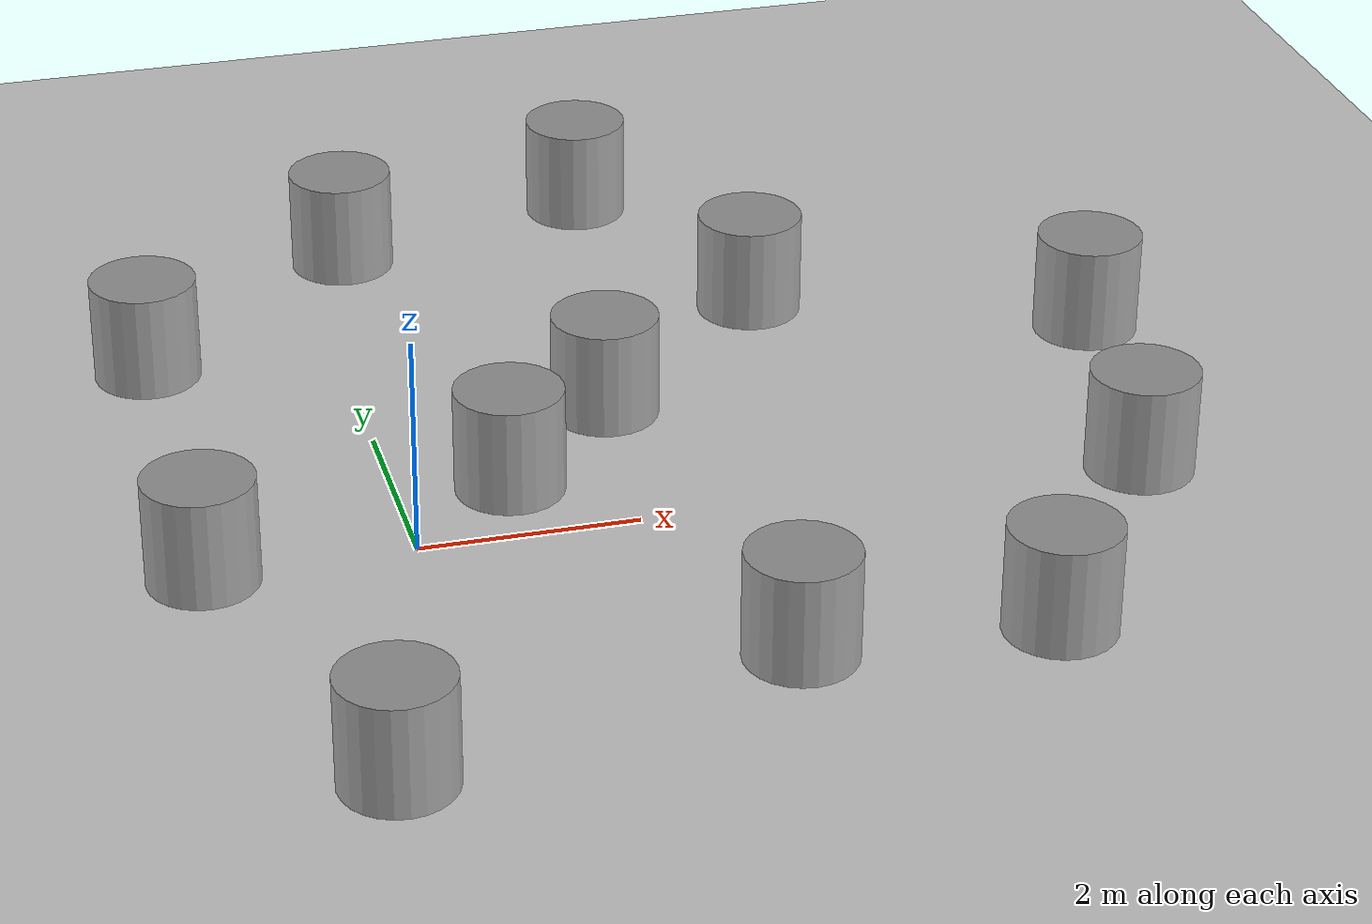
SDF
<sdf version="1.7">
 <world name="default">
  <model name="ground_plane">
   <static>1</static>
   <link name="link">
    <collision name="collision">
     <geometry><plane><normal>0 0 1</normal><size>100 100</size></plane></geometry>
     <surface><friction><ode><mu>100</mu><mu2>50</mu2></ode></friction></surface>
    </collision>
    <visual name="visual">
     <cast_shadows>0</cast_shadows>
     <geometry><plane><normal>0 0 1</normal><size>100 100</size></plane></geometry>
     <material>
      <script><uri>file://media/materials/scripts/gazebo.material</uri><name>Gazebo/Grey</name></script>
     </material>
    </visual>
   </link>
  </model>
  <scene><shadows>0</shadows><ambient>0.4 0.4 0.4 1</ambient><background>0.7 0.7 0.7 1</background></scene>
  <physics type="ode">
   <real_time_update_rate>1000</real_time_update_rate>
   <max_step_size>0.001</max_step_size>
   <real_time_factor>1</real_time_factor>
   <ode>
    <solver>
     <type>quick</type>
     <iters>150</iters>
     <precon_iters>0</precon_iters>
     <sor>1.4</sor>
     <use_dynamic_moi_rescaling>1</use_dynamic_moi_rescaling>
    </solver>
    <constraints>
     <cfm>1e-05</cfm>
     <erp>0.2</erp>
     <contact_max_correcting_vel>2000</contact_max_correcting_vel>
     <contact_surface_layer>0.01</contact_surface_layer>
    </constraints>
   </ode>
  </physics>
  <gravity>0 0 -9.8</gravity>
  <magnetic_field>6e-06 2.3e-05 -4.2e-05</magnetic_field>
  <atmosphere type="adiabatic"/>
  <spherical_coordinates>
   <surface_model>EARTH_WGS84</surface_model>
   <latitude_deg>0</latitude_deg>
   <longitude_deg>0</longitude_deg>
   <elevation>0</elevation>
   <heading_deg>0</heading_deg>
  </spherical_coordinates>
  <light name="user_spot_light_0" type="spot">
   <pose>5.84517 5.89616 1 0 -0 0</pose>
   <diffuse>0.5 0.5 0.5 1</diffuse>
   <specular>0.1 0.1 0.1 1</specular>
   <direction>0 0 -1</direction>
   <attenuation>
    <range>20</range>
    <constant>0.5</constant>
    <linear>0.01</linear>
    <quadratic>0.001</quadratic>
   </attenuation>
   <cast_shadows>0</cast_shadows>
   <spot><inner_angle>0.6</inner_angle><outer_angle>1</outer_angle><falloff>1</falloff></spot>
  </light>
  <model name="unit_cylinder">
   <pose>2.187 2.01576 0.499997 -4e-06 -4e-06 -0</pose>
   <link name="link">
    <inertial>
     <mass>1</mass>
     <inertia><ixx>0.145833</ixx><ixy>0</ixy><ixz>0</ixz><iyy>0.145833</iyy><iyz>0</iyz><izz>0.125</izz></inertia>
    </inertial>
    <collision name="collision">
     <geometry><cylinder><radius>0.5</radius><length>1</length></cylinder></geometry>
    </collision>
    <visual name="visual">
     <geometry><cylinder><radius>0.5</radius><length>1</length></cylinder></geometry>
     <material>
      <script><name>Gazebo/Grey</name><uri>file://media/materials/scripts/gazebo.material</uri></script>
     </material>
    </visual>
   </link>
  </model>
  <model name="unit_cylinder_0">
   <pose>4.06848 3.72896 0.499997 -4e-06 -4e-06 -0</pose>
   <link name="link">
    <inertial>
     <mass>1</mass>
     <inertia><ixx>0.145833</ixx><ixy>0</ixy><ixz>0</ixz><iyy>0.145833</iyy><iyz>0</iyz><izz>0.125</izz></inertia>
    </inertial>
    <collision name="collision">
     <geometry><cylinder><radius>0.5</radius><length>1</length></cylinder></geometry>
    </collision>
    <visual name="visual">
     <geometry><cylinder><radius>0.5</radius><length>1</length></cylinder></geometry>
     <material>
      <script><name>Gazebo/Grey</name><uri>file://media/materials/scripts/gazebo.material</uri></script>
     </material>
    </visual>
   </link>
  </model>
  <model name="unit_cylinder_1">
   <pose>0.41228 5.68237 0.499997 -4e-06 -4e-06 -0</pose>
   <link name="link">
    <inertial>
     <mass>1</mass>
     <inertia><ixx>0.145833</ixx><ixy>0</ixy><ixz>0</ixz><iyy>0.145833</iyy><iyz>0</iyz><izz>0.125</izz></inertia>
    </inertial>
    <collision name="collision">
     <geometry><cylinder><radius>0.5</radius><length>1</length></cylinder></geometry>
    </collision>
    <visual name="visual">
     <geometry><cylinder><radius>0.5</radius><length>1</length></cylinder></geometry>
     <material>
      <script><name>Gazebo/Grey</name><uri>file://media/materials/scripts/gazebo.material</uri></script>
     </material>
    </visual>
   </link>
  </model>
  <model name="unit_cylinder_2">
   <pose>6.57086 -0.233102 0.499997 -4e-06 -4e-06 -0</pose>
   <link name="link">
    <inertial>
     <mass>1</mass>
     <inertia><ixx>0.145833</ixx><ixy>0</ixy><ixz>0</ixz><iyy>0.145833</iyy><iyz>0</iyz><izz>0.125</izz></inertia>
    </inertial>
    <collision name="collision">
     <geometry><cylinder><radius>0.5</radius><length>1</length></cylinder></geometry>
    </collision>
    <visual name="visual">
     <geometry><cylinder><radius>0.5</radius><length>1</length></cylinder></geometry>
     <material>
      <script><name>Gazebo/Grey</name><uri>file://media/materials/scripts/gazebo.material</uri></script>
     </material>
    </visual>
   </link>
  </model>
  <model name="unit_cylinder_3">
   <pose>1.01813 0.848503 0.499997 -4e-06 -4e-06 -0</pose>
   <link name="link">
    <inertial>
     <mass>1</mass>
     <inertia><ixx>0.145833</ixx><ixy>0</ixy><ixz>0</ixz><iyy>0.145833</iyy><iyz>0</iyz><izz>0.125</izz></inertia>
    </inertial>
    <collision name="collision">
     <geometry><cylinder><radius>0.5</radius><length>1</length></cylinder></geometry>
    </collision>
    <visual name="visual">
     <geometry><cylinder><radius>0.5</radius><length>1</length></cylinder></geometry>
     <material>
      <script><name>Gazebo/Grey</name><uri>file://media/materials/scripts/gazebo.material</uri></script>
     </material>
    </visual>
   </link>
  </model>
  <model name="unit_cylinder_4">
   <pose>2.96724 6.31775 0.499997 -4e-06 -4e-06 -0</pose>
   <link name="link">
    <inertial>
     <mass>1</mass>
     <inertia><ixx>0.145833</ixx><ixy>0</ixy><ixz>0</ixz><iyy>0.145833</iyy><iyz>0</iyz><izz>0.125</izz></inertia>
    </inertial>
    <collision name="collision">
     <geometry><cylinder><radius>0.5</radius><length>1</length></cylinder></geometry>
    </collision>
    <visual name="visual">
     <geometry><cylinder><radius>0.5</radius><length>1</length></cylinder></geometry>
     <material>
      <script><name>Gazebo/Grey</name><uri>file://media/materials/scripts/gazebo.material</uri></script>
     </material>
    </visual>
   </link>
  </model>
  <model name="unit_cylinder_5">
   <pose>7.0912 2.49532 0.499997 -4e-06 -4e-06 -0</pose>
   <link name="link">
    <inertial>
     <mass>1</mass>
     <inertia><ixx>0.145833</ixx><ixy>0</ixy><ixz>0</ixz><iyy>0.145833</iyy><iyz>0</iyz><izz>0.125</izz></inertia>
    </inertial>
    <collision name="collision">
     <geometry><cylinder><radius>0.5</radius><length>1</length></cylinder></geometry>
    </collision>
    <visual name="visual">
     <geometry><cylinder><radius>0.5</radius><length>1</length></cylinder></geometry>
     <material>
      <script><name>Gazebo/Grey</name><uri>file://media/materials/scripts/gazebo.material</uri></script>
     </material>
    </visual>
   </link>
  </model>
  <model name="unit_cylinder_6">
   <pose>4.92297 -2.61244 0.499997 -4e-06 -4e-06 -0</pose>
   <link name="link">
    <inertial>
     <mass>1</mass>
     <inertia><ixx>0.145833</ixx><ixy>0</ixy><ixz>0</ixz><iyy>0.145833</iyy><iyz>0</iyz><izz>0.125</izz></inertia>
    </inertial>
    <collision name="collision">
     <geometry><cylinder><radius>0.5</radius><length>1</length></cylinder></geometry>
    </collision>
    <visual name="visual">
     <geometry><cylinder><radius>0.5</radius><length>1</length></cylinder></geometry>
     <material>
      <script><name>Gazebo/Grey</name><uri>file://media/materials/scripts/gazebo.material</uri></script>
     </material>
    </visual>
   </link>
  </model>
  <model name="unit_cylinder_7">
   <pose>2.70913 -2.46892 0.499997 -4e-06 -4e-06 -0</pose>
   <link name="link">
    <inertial>
     <mass>1</mass>
     <inertia><ixx>0.145833</ixx><ixy>0</ixy><ixz>0</ixz><iyy>0.145833</iyy><iyz>0</iyz><izz>0.125</izz></inertia>
    </inertial>
    <collision name="collision">
     <geometry><cylinder><radius>0.5</radius><length>1</length></cylinder></geometry>
    </collision>
    <visual name="visual">
     <geometry><cylinder><radius>0.5</radius><length>1</length></cylinder></geometry>
     <material>
      <script><name>Gazebo/Grey</name><uri>file://media/materials/scripts/gazebo.material</uri></script>
     </material>
    </visual>
   </link>
  </model>
  <model name="unit_cylinder_8">
   <pose>-1.86689 -0.035681 0.499997 -4e-06 -4e-06 -0</pose>
   <link name="link">
    <inertial>
     <mass>1</mass>
     <inertia><ixx>0.145833</ixx><ixy>0</ixy><ixz>0</ixz><iyy>0.145833</iyy><iyz>0</iyz><izz>0.125</izz></inertia>
    </inertial>
    <collision name="collision">
     <geometry><cylinder><radius>0.5</radius><length>1</length></cylinder></geometry>
    </collision>
    <visual name="visual">
     <geometry><cylinder><radius>0.5</radius><length>1</length></cylinder></geometry>
     <material>
      <script><name>Gazebo/Grey</name><uri>file://media/materials/scripts/gazebo.material</uri></script>
     </material>
    </visual>
   </link>
  </model>
  <model name="unit_cylinder_9">
   <pose>-0.861811 -3.44784 0.499997 -4e-06 -4e-06 -0</pose>
   <link name="link">
    <inertial>
     <mass>1</mass>
     <inertia><ixx>0.145833</ixx><ixy>0</ixy><ixz>0</ixz><iyy>0.145833</iyy><iyz>0</iyz><izz>0.125</izz></inertia>
    </inertial>
    <collision name="collision">
     <geometry><cylinder><radius>0.5</radius><length>1</length></cylinder></geometry>
    </collision>
    <visual name="visual">
     <geometry><cylinder><radius>0.5</radius><length>1</length></cylinder></geometry>
     <material>
      <script><name>Gazebo/Grey</name><uri>file://media/materials/scripts/gazebo.material</uri></script>
     </material>
    </visual>
   </link>
  </model>
  <model name="unit_cylinder_10">
   <pose>-1.80129 3.80623 0.499997 -4e-06 -4e-06 -0</pose>
   <link name="link">
    <inertial>
     <mass>1</mass>
     <inertia><ixx>0.145833</ixx><ixy>0</ixy><ixz>0</ixz><iyy>0.145833</iyy><iyz>0</iyz><izz>0.125</izz></inertia>
    </inertial>
    <collision name="collision">
     <geometry><cylinder><radius>0.5</radius><length>1</length></cylinder></geometry>
    </collision>
    <visual name="visual">
     <geometry><cylinder><radius>0.5</radius><length>1</length></cylinder></geometry>
     <material>
      <script><name>Gazebo/Grey</name><uri>file://media/materials/scripts/gazebo.material</uri></script>
     </material>
    </visual>
   </link>
  </model>
 </world>
</sdf>
